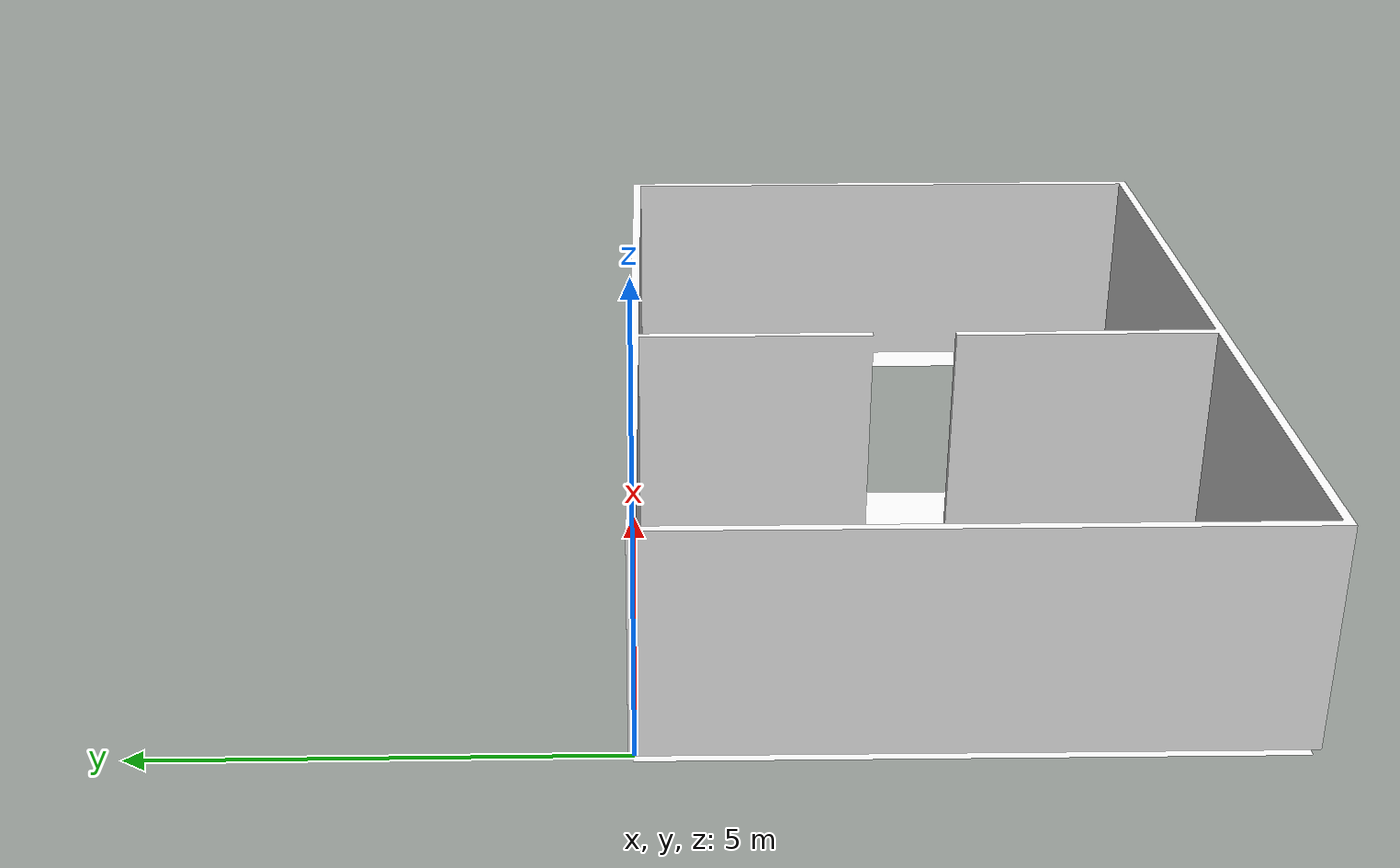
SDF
<?xml version='1.0' encoding='utf-8'?>
<sdf version="1.7">
  <model name="first_building_L2">
    <static>true</static>
    <link name="floor_1">
      <visual name="visual">
        <geometry>
          <mesh>
            <uri>model://first_building_L2/meshes/floor_1.obj</uri>
          </mesh>
        </geometry>
        <material>
          <diffuse>1.0 1.0 1.0</diffuse>
          <specular>0.1 0.1 0.1</specular>
          <pbr>
            <metal>
              <metalness>0.0</metalness>
              <albedo_map>model://first_building_L2/meshes/blue_linoleum.png</albedo_map>
            </metal>
          </pbr>
          <script>
            <uri>model://first_building_L2/meshes/</uri>
            <name>floor_1_Diffuse</name>
          </script>
        </material>
      </visual>
      <collision name="collision">
        <geometry>
          <mesh>
            <uri>model://first_building_L2/meshes/floor_1.obj</uri>
          </mesh>
        </geometry>
        <surface>
          <contact>
            <collide_bitmask>0x01</collide_bitmask>
          </contact>
        </surface>
      </collision>
    </link>
    <link name="wall_1">
      <visual name="wall_1">
        <geometry>
          <mesh>
            <uri>model://first_building_L2/meshes/wall_1.obj</uri>
          </mesh>
        </geometry>
        <transparency>0.0</transparency>
        <material>
          <diffuse>1.0 1.0 1.0</diffuse>
          <specular>0.1 0.1 0.1</specular>
          <pbr>
            <metal>
              <metalness>0.0</metalness>
              <albedo_map>model://first_building_L2/meshes/default.png</albedo_map>
            </metal>
          </pbr>
          <script>
            <uri>model://first_building_L2/meshes/</uri>
            <name>wall_1_Diffuse</name>
          </script>
        </material>
      </visual>
      <collision name="collision">
        <geometry>
          <mesh>
            <uri>model://first_building_L2/meshes/wall_1.obj</uri>
          </mesh>
        </geometry>
        <surface>
          <contact>
            <collide_bitmask>0x01</collide_bitmask>
          </contact>
        </surface>
      </collision>
      <pose>-0.04136300707296048 -6.8183635863447405 0 0 0 0</pose>
    </link>
  </model>
</sdf>
